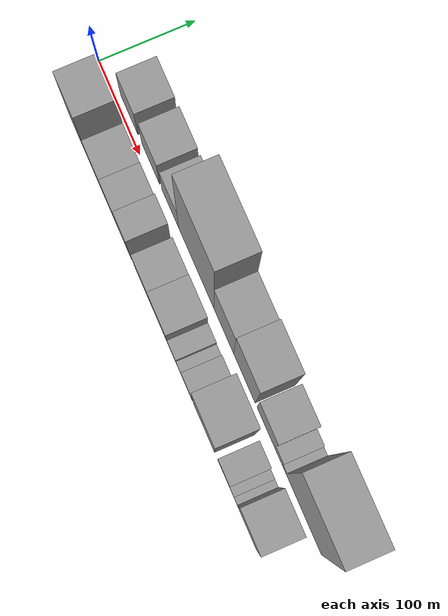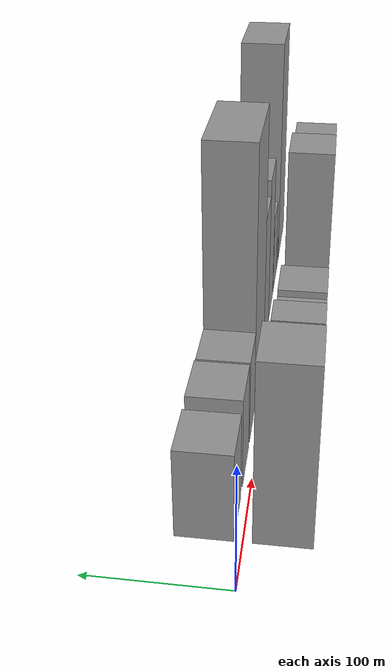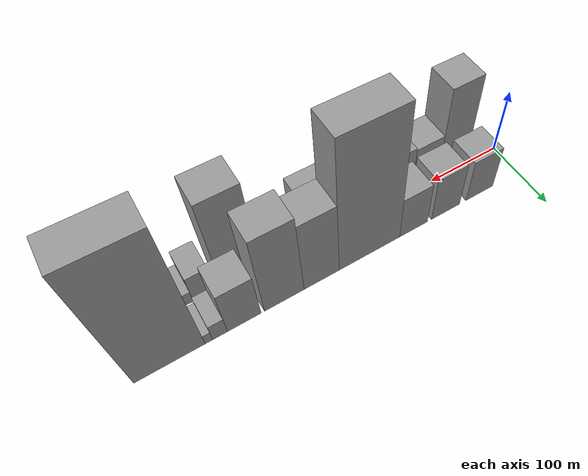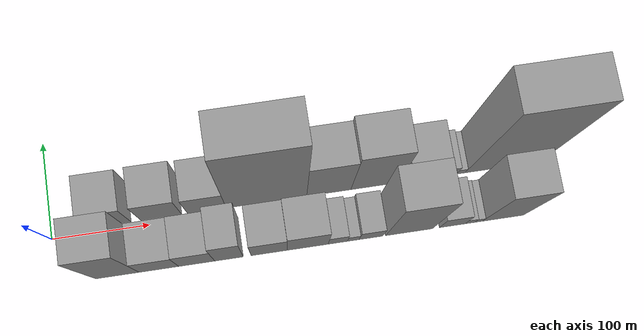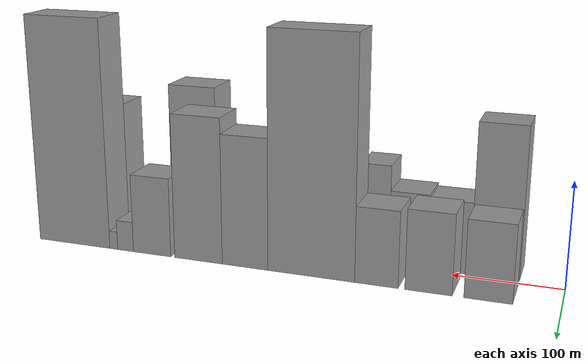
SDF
<sdf version="1.6">
 <world name="default">
  <scene>
   <sky><clouds><speed>12</speed></clouds></sky>
   <ambient>0.4 0.4 0.4 1</ambient>
   <background>0.7 0.7 0.7 1</background>
   <shadows>1</shadows>
  </scene>
  <gravity>0 0 -9.8066</gravity>
  <magnetic_field>6e-06 2.3e-05 -4.2e-05</magnetic_field>
  <physics default="0" name="default_physics" type="ode">
   <ode>
    <solver>
     <type>quick</type>
     <iters>10</iters>
     <sor>1.0</sor>
     <use_dynamic_moi_rescaling>0</use_dynamic_moi_rescaling>
    </solver>
    <constraints>
     <cfm>0</cfm>
     <erp>0.2</erp>
     <contact_max_correcting_vel>100</contact_max_correcting_vel>
     <contact_surface_layer>0.001</contact_surface_layer>
    </constraints>
   </ode>
   <max_step_size>0.004</max_step_size>
   <real_time_factor>1</real_time_factor>
   <real_time_update_rate>250</real_time_update_rate>
  </physics>
  <light name="sun" type="directional">
   <pose>0 0 10 0 0 0</pose>
   <diffuse>0.8 0.8 0.8 1</diffuse>
   <specular>0.2 0.2 0.2 1</specular>
   <attenuation>
    <range>1000</range>
    <constant>0.9</constant>
    <linear>0.01</linear>
    <quadratic>0.001</quadratic>
   </attenuation>
   <direction>-0.5 0.1 -0.9</direction>
  </light>
  <model name="building_1">
   <static>1</static>
   <pose>60.7511 26.0000 0 0.000000 0.000000 1.570796</pose>
   <link name="link">
    <pose>0 0 36.00 0 0 0</pose>
    <collision name="collision"><geometry><box><size>40.0000 41.5022 72.0000</size></box></geometry></collision>
    <visual name="visual">
     <cast_shadows>0</cast_shadows>
     <geometry><box><size>40.0000 41.5022 72.0000</size></box></geometry>
     <material>
      <script>
       <uri>model://grey_wall/materials/scripts</uri>
       <uri>model://grey_wall/materials/textures</uri>
       <name>vrc/grey_wall</name>
      </script>
     </material>
    </visual>
   </link>
  </model>
  <model name="building_2">
   <static>1</static>
   <pose>112.4224 26.0000 0 0.000000 0.000000 1.570796</pose>
   <link name="link">
    <pose>0 0 37.50 0 0 0</pose>
    <collision name="collision"><geometry><box><size>40.0000 41.8404 75.0000</size></box></geometry></collision>
    <visual name="visual">
     <cast_shadows>0</cast_shadows>
     <geometry><box><size>40.0000 41.8404 75.0000</size></box></geometry>
     <material>
      <script>
       <uri>model://grey_wall/materials/scripts</uri>
       <uri>model://grey_wall/materials/textures</uri>
       <name>vrc/grey_wall</name>
      </script>
     </material>
    </visual>
   </link>
  </model>
  <model name="building_3">
   <static>1</static>
   <pose>159.2031 26.0000 0 0.000000 0.000000 1.570796</pose>
   <link name="link">
    <pose>0 0 36.00 0 0 0</pose>
    <collision name="collision"><geometry><box><size>40.0000 39.7211 72.0000</size></box></geometry></collision>
    <visual name="visual">
     <cast_shadows>0</cast_shadows>
     <geometry><box><size>40.0000 39.7211 72.0000</size></box></geometry>
     <material>
      <script>
       <uri>model://grey_wall/materials/scripts</uri>
       <uri>model://grey_wall/materials/textures</uri>
       <name>vrc/grey_wall</name>
      </script>
     </material>
    </visual>
   </link>
  </model>
  <model name="building_4">
   <static>1</static>
   <pose>220.4711 26.0000 0 0.000000 0.000000 1.570796</pose>
   <link name="link">
    <pose>0 0 112.50 0 0 0</pose>
    <collision name="collision"><geometry><box><size>40.0000 82.8148 225.0000</size></box></geometry></collision>
    <visual name="visual">
     <cast_shadows>0</cast_shadows>
     <geometry><box><size>40.0000 82.8148 225.0000</size></box></geometry>
     <material>
      <script>
       <uri>model://grey_wall/materials/scripts</uri>
       <uri>model://grey_wall/materials/textures</uri>
       <name>vrc/grey_wall</name>
      </script>
     </material>
    </visual>
   </link>
  </model>
  <model name="building_5">
   <static>1</static>
   <pose>284.6970 26.0000 0 0.000000 0.000000 1.570796</pose>
   <link name="link">
    <pose>0 0 63.00 0 0 0</pose>
    <collision name="collision"><geometry><box><size>40.0000 45.6370 126.0000</size></box></geometry></collision>
    <visual name="visual">
     <cast_shadows>0</cast_shadows>
     <geometry><box><size>40.0000 45.6370 126.0000</size></box></geometry>
     <material>
      <script>
       <uri>model://grey_wall/materials/scripts</uri>
       <uri>model://grey_wall/materials/textures</uri>
       <name>vrc/grey_wall</name>
      </script>
     </material>
    </visual>
   </link>
  </model>
  <model name="building_6">
   <static>1</static>
   <pose>332.1319 26.0000 0 0.000000 0.000000 1.570796</pose>
   <link name="link">
    <pose>0 0 70.50 0 0 0</pose>
    <collision name="collision"><geometry><box><size>40.0000 49.2328 141.0000</size></box></geometry></collision>
    <visual name="visual">
     <cast_shadows>0</cast_shadows>
     <geometry><box><size>40.0000 49.2328 141.0000</size></box></geometry>
     <material>
      <script>
       <uri>model://grey_wall/materials/scripts</uri>
       <uri>model://grey_wall/materials/textures</uri>
       <name>vrc/grey_wall</name>
      </script>
     </material>
    </visual>
   </link>
  </model>
  <model name="building_7">
   <static>1</static>
   <pose>380.7495 26.0000 0 0.000000 0.000000 1.570796</pose>
   <link name="link">
    <pose>0 0 39.00 0 0 0</pose>
    <collision name="collision"><geometry><box><size>40.0000 40.0025 78.0000</size></box></geometry></collision>
    <visual name="visual">
     <cast_shadows>0</cast_shadows>
     <geometry><box><size>40.0000 40.0025 78.0000</size></box></geometry>
     <material>
      <script>
       <uri>model://grey_wall/materials/scripts</uri>
       <uri>model://grey_wall/materials/textures</uri>
       <name>vrc/grey_wall</name>
      </script>
     </material>
    </visual>
   </link>
  </model>
  <model name="building_8">
   <static>1</static>
   <pose>409.3524 26.0000 0 0.000000 0.000000 1.570796</pose>
   <link name="link">
    <pose>0 0 15.00 0 0 0</pose>
    <collision name="collision"><geometry><box><size>40.0000 17.2033 30.0000</size></box></geometry></collision>
    <visual name="visual">
     <cast_shadows>0</cast_shadows>
     <geometry><box><size>40.0000 17.2033 30.0000</size></box></geometry>
     <material>
      <script>
       <uri>model://grey_wall/materials/scripts</uri>
       <uri>model://grey_wall/materials/textures</uri>
       <name>vrc/grey_wall</name>
      </script>
     </material>
    </visual>
   </link>
  </model>
  <model name="building_9">
   <static>1</static>
   <pose>422.2526 26.0000 0 0.000000 0.000000 1.570796</pose>
   <link name="link">
    <pose>0 0 9.00 0 0 0</pose>
    <collision name="collision"><geometry><box><size>40.0000 8.5971 18.0000</size></box></geometry></collision>
    <visual name="visual">
     <cast_shadows>0</cast_shadows>
     <geometry><box><size>40.0000 8.5971 18.0000</size></box></geometry>
     <material>
      <script>
       <uri>model://grey_wall/materials/scripts</uri>
       <uri>model://grey_wall/materials/textures</uri>
       <name>vrc/grey_wall</name>
      </script>
     </material>
    </visual>
   </link>
  </model>
  <model name="building_10">
   <static>1</static>
   <pose>465.9056 26.0000 0 0.000000 0.000000 1.570796</pose>
   <link name="link">
    <pose>0 0 112.50 0 0 0</pose>
    <collision name="collision"><geometry><box><size>40.0000 78.7091 225.0000</size></box></geometry></collision>
    <visual name="visual">
     <cast_shadows>0</cast_shadows>
     <geometry><box><size>40.0000 78.7091 225.0000</size></box></geometry>
     <material>
      <script>
       <uri>model://grey_wall/materials/scripts</uri>
       <uri>model://grey_wall/materials/textures</uri>
       <name>vrc/grey_wall</name>
      </script>
     </material>
    </visual>
   </link>
  </model>
  <model name="building_11">
   <static>1</static>
   <pose>62.0202 -26.0000 0 0.000000 0.000000 1.570796</pose>
   <link name="link">
    <pose>0 0 72.00 0 0 0</pose>
    <collision name="collision"><geometry><box><size>40.0000 44.0403 144.0000</size></box></geometry></collision>
    <visual name="visual">
     <cast_shadows>0</cast_shadows>
     <geometry><box><size>40.0000 44.0403 144.0000</size></box></geometry>
     <material>
      <script>
       <uri>model://grey_wall/materials/scripts</uri>
       <uri>model://grey_wall/materials/textures</uri>
       <name>vrc/grey_wall</name>
      </script>
     </material>
    </visual>
   </link>
  </model>
  <model name="building_12">
   <static>1</static>
   <pose>103.9570 -26.0000 0 0.000000 0.000000 1.570796</pose>
   <link name="link">
    <pose>0 0 34.50 0 0 0</pose>
    <collision name="collision"><geometry><box><size>40.0000 39.8334 69.0000</size></box></geometry></collision>
    <visual name="visual">
     <cast_shadows>0</cast_shadows>
     <geometry><box><size>40.0000 39.8334 69.0000</size></box></geometry>
     <material>
      <script>
       <uri>model://grey_wall/materials/scripts</uri>
       <uri>model://grey_wall/materials/textures</uri>
       <name>vrc/grey_wall</name>
      </script>
     </material>
    </visual>
   </link>
  </model>
  <model name="building_13">
   <static>1</static>
   <pose>142.1082 -26.0000 0 0.000000 0.000000 1.570796</pose>
   <link name="link">
    <pose>0 0 36.00 0 0 0</pose>
    <collision name="collision"><geometry><box><size>40.0000 36.4689 72.0000</size></box></geometry></collision>
    <visual name="visual">
     <cast_shadows>0</cast_shadows>
     <geometry><box><size>40.0000 36.4689 72.0000</size></box></geometry>
     <material>
      <script>
       <uri>model://grey_wall/materials/scripts</uri>
       <uri>model://grey_wall/materials/textures</uri>
       <name>vrc/grey_wall</name>
      </script>
     </material>
    </visual>
   </link>
  </model>
  <model name="building_14">
   <static>1</static>
   <pose>174.8274 -26.0000 0 0.000000 0.000000 1.570796</pose>
   <link name="link">
    <pose>0 0 48.00 0 0 0</pose>
    <collision name="collision"><geometry><box><size>40.0000 28.9694 96.0000</size></box></geometry></collision>
    <visual name="visual">
     <cast_shadows>0</cast_shadows>
     <geometry><box><size>40.0000 28.9694 96.0000</size></box></geometry>
     <material>
      <script>
       <uri>model://grey_wall/materials/scripts</uri>
       <uri>model://grey_wall/materials/textures</uri>
       <name>vrc/grey_wall</name>
      </script>
     </material>
    </visual>
   </link>
  </model>
  <model name="building_15">
   <static>1</static>
   <pose>215.7594 -26.0000 0 0.000000 0.000000 1.570796</pose>
   <link name="link">
    <pose>0 0 36.00 0 0 0</pose>
    <collision name="collision"><geometry><box><size>40.0000 36.8947 72.0000</size></box></geometry></collision>
    <visual name="visual">
     <cast_shadows>0</cast_shadows>
     <geometry><box><size>40.0000 36.8947 72.0000</size></box></geometry>
     <material>
      <script>
       <uri>model://grey_wall/materials/scripts</uri>
       <uri>model://grey_wall/materials/textures</uri>
       <name>vrc/grey_wall</name>
      </script>
     </material>
    </visual>
   </link>
  </model>
  <model name="building_16">
   <static>1</static>
   <pose>255.0029 -26.0000 0 0.000000 0.000000 1.570796</pose>
   <link name="link">
    <pose>0 0 39.00 0 0 0</pose>
    <collision name="collision"><geometry><box><size>40.0000 41.5921 78.0000</size></box></geometry></collision>
    <visual name="visual">
     <cast_shadows>0</cast_shadows>
     <geometry><box><size>40.0000 41.5921 78.0000</size></box></geometry>
     <material>
      <script>
       <uri>model://grey_wall/materials/scripts</uri>
       <uri>model://grey_wall/materials/textures</uri>
       <name>vrc/grey_wall</name>
      </script>
     </material>
    </visual>
   </link>
  </model>
  <model name="building_17">
   <static>1</static>
   <pose>285.6100 -26.0000 0 0.000000 0.000000 1.570796</pose>
   <link name="link">
    <pose>0 0 19.50 0 0 0</pose>
    <collision name="collision"><geometry><box><size>40.0000 19.6221 39.0000</size></box></geometry></collision>
    <visual name="visual">
     <cast_shadows>0</cast_shadows>
     <geometry><box><size>40.0000 19.6221 39.0000</size></box></geometry>
     <material>
      <script>
       <uri>model://grey_wall/materials/scripts</uri>
       <uri>model://grey_wall/materials/textures</uri>
       <name>vrc/grey_wall</name>
      </script>
     </material>
    </visual>
   </link>
  </model>
  <model name="building_18">
   <static>1</static>
   <pose>301.4681 -26.0000 0 0.000000 0.000000 1.570796</pose>
   <link name="link">
    <pose>0 0 13.50 0 0 0</pose>
    <collision name="collision"><geometry><box><size>40.0000 12.0942 27.0000</size></box></geometry></collision>
    <visual name="visual">
     <cast_shadows>0</cast_shadows>
     <geometry><box><size>40.0000 12.0942 27.0000</size></box></geometry>
     <material>
      <script>
       <uri>model://grey_wall/materials/scripts</uri>
       <uri>model://grey_wall/materials/textures</uri>
       <name>vrc/grey_wall</name>
      </script>
     </material>
    </visual>
   </link>
  </model>
  <model name="building_19">
   <static>1</static>
   <pose>319.6669 -26.0000 0 0.000000 0.000000 1.570796</pose>
   <link name="link">
    <pose>0 0 21.00 0 0 0</pose>
    <collision name="collision"><geometry><box><size>40.0000 24.3034 42.0000</size></box></geometry></collision>
    <visual name="visual">
     <cast_shadows>0</cast_shadows>
     <geometry><box><size>40.0000 24.3034 42.0000</size></box></geometry>
     <material>
      <script>
       <uri>model://grey_wall/materials/scripts</uri>
       <uri>model://grey_wall/materials/textures</uri>
       <name>vrc/grey_wall</name>
      </script>
     </material>
    </visual>
   </link>
  </model>
  <model name="building_20">
   <static>1</static>
   <pose>359.0231 -26.0000 0 0.000000 0.000000 1.570796</pose>
   <link name="link">
    <pose>0 0 78.00 0 0 0</pose>
    <collision name="collision"><geometry><box><size>40.0000 48.4089 156.0000</size></box></geometry></collision>
    <visual name="visual">
     <cast_shadows>0</cast_shadows>
     <geometry><box><size>40.0000 48.4089 156.0000</size></box></geometry>
     <material>
      <script>
       <uri>model://grey_wall/materials/scripts</uri>
       <uri>model://grey_wall/materials/textures</uri>
       <name>vrc/grey_wall</name>
      </script>
     </material>
    </visual>
   </link>
  </model>
  <model name="building_21">
   <static>1</static>
   <pose>403.4600 -26.0000 0 0.000000 0.000000 1.570796</pose>
   <link name="link">
    <pose>0 0 24.00 0 0 0</pose>
    <collision name="collision"><geometry><box><size>40.0000 26.4649 48.0000</size></box></geometry></collision>
    <visual name="visual">
     <cast_shadows>0</cast_shadows>
     <geometry><box><size>40.0000 26.4649 48.0000</size></box></geometry>
     <material>
      <script>
       <uri>model://grey_wall/materials/scripts</uri>
       <uri>model://grey_wall/materials/textures</uri>
       <name>vrc/grey_wall</name>
      </script>
     </material>
    </visual>
   </link>
  </model>
  <model name="building_22">
   <static>1</static>
   <pose>421.7397 -26.0000 0 0.000000 0.000000 1.570796</pose>
   <link name="link">
    <pose>0 0 10.50 0 0 0</pose>
    <collision name="collision"><geometry><box><size>40.0000 10.0945 21.0000</size></box></geometry></collision>
    <visual name="visual">
     <cast_shadows>0</cast_shadows>
     <geometry><box><size>40.0000 10.0945 21.0000</size></box></geometry>
     <material>
      <script>
       <uri>model://grey_wall/materials/scripts</uri>
       <uri>model://grey_wall/materials/textures</uri>
       <name>vrc/grey_wall</name>
      </script>
     </material>
    </visual>
   </link>
  </model>
  <model name="building_23">
   <static>1</static>
   <pose>430.6485 -26.0000 0 0.000000 0.000000 1.570796</pose>
   <link name="link">
    <pose>0 0 9.00 0 0 0</pose>
    <collision name="collision"><geometry><box><size>40.0000 7.7231 18.0000</size></box></geometry></collision>
    <visual name="visual">
     <cast_shadows>0</cast_shadows>
     <geometry><box><size>40.0000 7.7231 18.0000</size></box></geometry>
     <material>
      <script>
       <uri>model://grey_wall/materials/scripts</uri>
       <uri>model://grey_wall/materials/textures</uri>
       <name>vrc/grey_wall</name>
      </script>
     </material>
    </visual>
   </link>
  </model>
  <model name="building_24">
   <static>1</static>
   <pose>455.8191 -26.0000 0 0.000000 0.000000 1.570796</pose>
   <link name="link">
    <pose>0 0 66.00 0 0 0</pose>
    <collision name="collision"><geometry><box><size>40.0000 42.6181 132.0000</size></box></geometry></collision>
    <visual name="visual">
     <cast_shadows>0</cast_shadows>
     <geometry><box><size>40.0000 42.6181 132.0000</size></box></geometry>
     <material>
      <script>
       <uri>model://grey_wall/materials/scripts</uri>
       <uri>model://grey_wall/materials/textures</uri>
       <name>vrc/grey_wall</name>
      </script>
     </material>
    </visual>
   </link>
  </model>
 </world>
</sdf>
